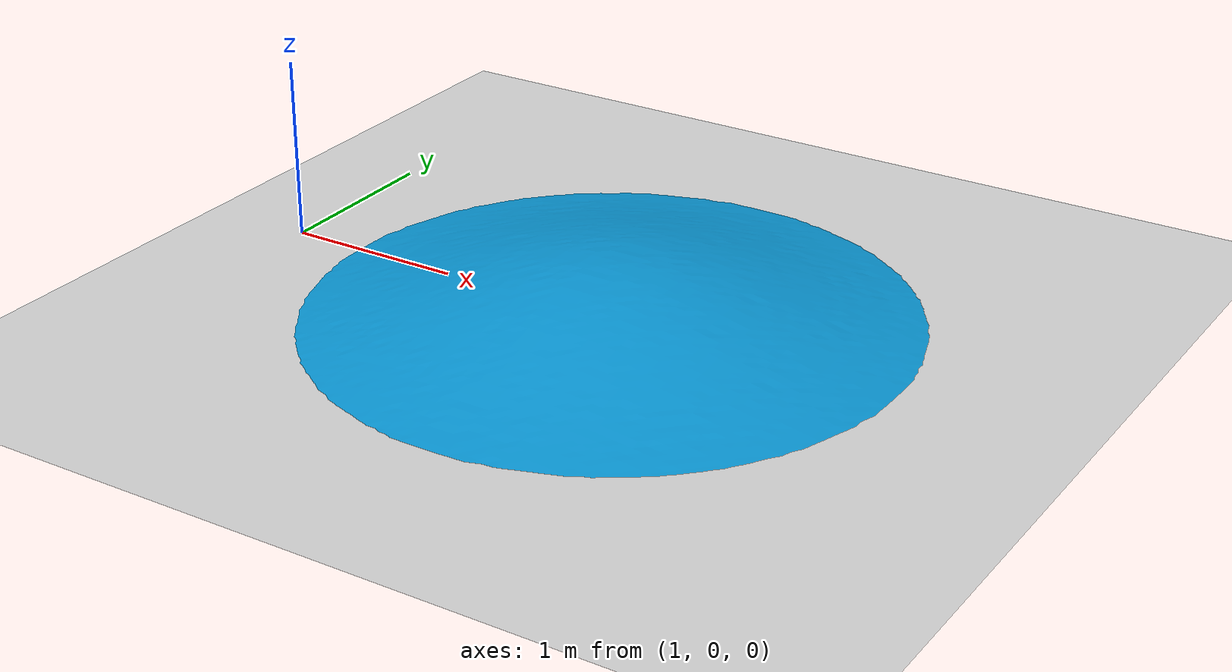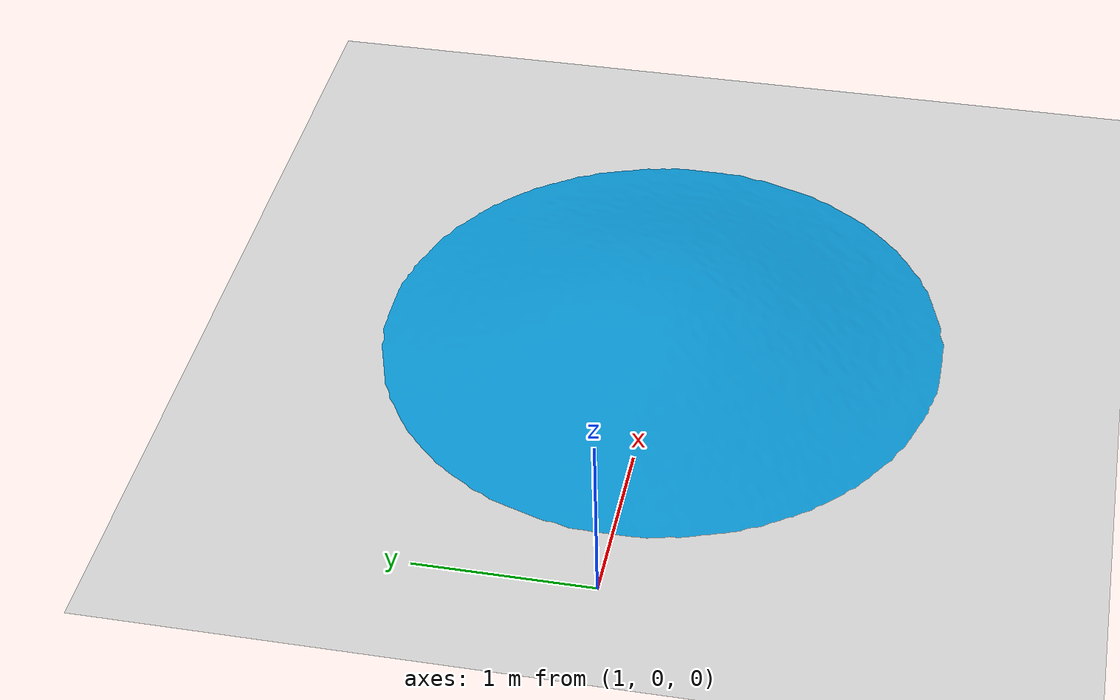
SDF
<?xml version="1.0"?>
<sdf version="1.8">
  <world name="leo_with_wavy_ground">
    <physics name="1ms" type="ignored">
      <max_step_size>0.001</max_step_size>
      <real_time_factor>1.0</real_time_factor>
    </physics>

    <plugin
      filename="ignition-gazebo-physics-system"
      name="ignition::gazebo::systems::Physics">
    </plugin>
    <plugin
      filename="ignition-gazebo-sensors-system"
      name="ignition::gazebo::systems::Sensors">
      <render_engine>ogre2</render_engine>
    </plugin>
    <plugin
      filename="ignition-gazebo-scene-broadcaster-system"
      name="ignition::gazebo::systems::SceneBroadcaster">
    </plugin>
    <plugin
      filename="ignition-gazebo-user-commands-system"
      name="ignition::gazebo::systems::UserCommands">
    </plugin>

    <light name="sun" type="directional">
      <cast_shadows>true</cast_shadows>
      <pose>10 10 10 0 0 0</pose>
      <diffuse>0.8 0.8 0.8 1</diffuse>
      <specular>0.2 0.2 0.2 1</specular>
      <attenuation>
        <range>1000</range>
        <constant>0.9</constant>
        <linear>0.01</linear>
        <quadratic>0.001</quadratic>
      </attenuation>
      <direction>-0.5 0.1 -0.9</direction>
    </light>

    <model name="ground_plane">
      <static>true</static>
      <link name="link">
        <collision name="collision">
          <geometry>
            <plane>
              <normal>0 0 1</normal>
              <size>100 100</size>
            </plane>
          </geometry>
          <surface>
            <friction>
              <ode>
                <mu>50</mu>
              </ode>
              <bullet>
                <friction>1</friction>
                <friction2>1</friction2>
                <rolling_friction>0.1</rolling_friction>
              </bullet>
            </friction>
          </surface>
        </collision>
        <visual name="visual">
          <geometry>
            <plane>
              <normal>0 0 1</normal>
              <size>100 100</size>
            </plane>
          </geometry>
          <material>
            <ambient>0.8 0.8 0.8 1</ambient>
            <diffuse>0.8 0.8 0.8 1</diffuse>
            <specular>0.8 0.8 0.8 1</specular>
          </material>
        </visual>
      </link>
    </model>

    <model name="my_model">
      <pose>3 0 0.1 0 0 0</pose> <!-- Update the pose as needed -->
      <include>
        <uri>model://folder_test</uri> <!-- Ensure this path is correct for your model -->
      </include>
    </model>

  </world>
</sdf>

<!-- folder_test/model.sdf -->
<sdf version="1.7">
  <model name='test_item'>
    <pose>0 0 0 0 0 0</pose>
    <static>1</static>

    <link name='link'>

      <collision name='collision'>
        <geometry>
          <mesh>
            <uri>model://folder_test/meshes/mesh_waves.stl</uri>
          </mesh>
        </geometry>
      </collision>

      <visual name='visual'>
        <cast_shadows>1</cast_shadows>
        <geometry>
          <mesh>
            <uri>model://folder_test/meshes/mesh_waves.dae</uri>
          </mesh>
        </geometry>
      </visual>

    </link>
  </model>
</sdf>
